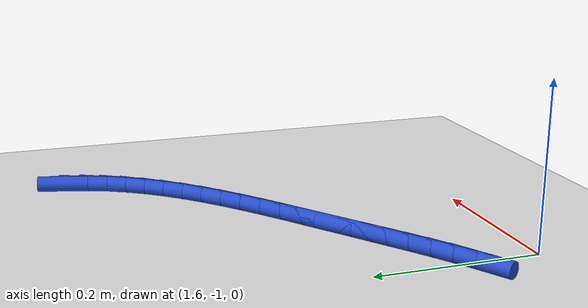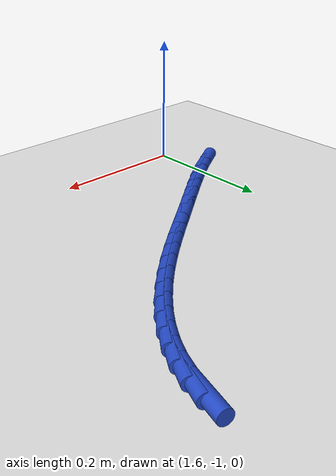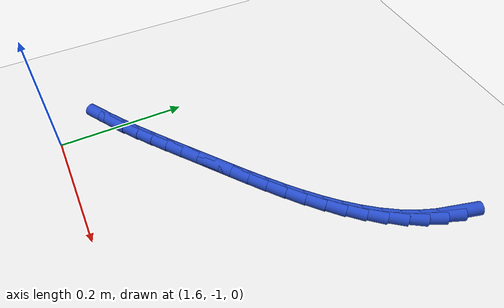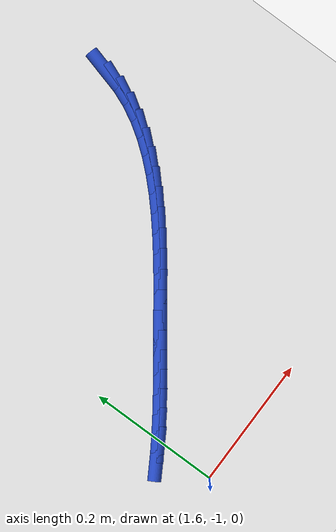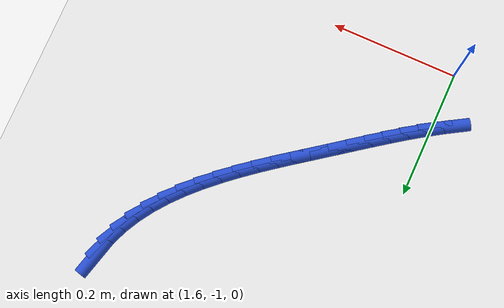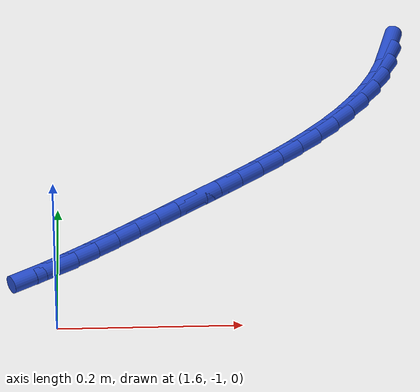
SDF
<sdf version="1.6">
 <world name="default">
  <model name="ground_plane">
   <static>1</static>
   <link name="link">
    <collision name="collision">
     <geometry><plane><normal>0 0 1</normal><size>100 100</size></plane></geometry>
     <surface><friction><ode><mu>100</mu><mu2>50</mu2></ode></friction></surface>
    </collision>
    <visual name="visual">
     <cast_shadows>0</cast_shadows>
     <geometry><plane><normal>0 0 1</normal><size>100 100</size></plane></geometry>
     <material>
      <script><uri>file://media/materials/scripts/gazebo.material</uri><name>Gazebo/WhiteGlow</name></script>
     </material>
    </visual>
   </link>
  </model>
  <model name="line">
   <link name="link_140">
    <pose>1.9840193889303164 -0.5319811646775158 0.01 0 1.57 1.309776617764511</pose>
    <collision name="collision">
     <geometry><cylinder><radius>0.01</radius><length>0.08</length></cylinder></geometry>
    </collision>
    <visual name="visual">
     <material>
      <script><name>Gazebo/Blue</name><uri>file://media/materials/scripts/gazebo.material</uri></script>
     </material>
     <geometry><cylinder><radius>0.01</radius><length>0.08</length></cylinder></geometry>
    </visual>
   </link>
   <link name="link_141">
    <pose>1.9772105139700153 -0.5574717131408597 0.01 0 1.57 1.1932315954883381</pose>
    <collision name="collision">
     <geometry><cylinder><radius>0.01</radius><length>0.08</length></cylinder></geometry>
    </collision>
    <visual name="visual">
     <material>
      <script><name>Gazebo/Blue</name><uri>file://media/materials/scripts/gazebo.material</uri></script>
     </material>
     <geometry><cylinder><radius>0.01</radius><length>0.08</length></cylinder></geometry>
    </visual>
   </link>
   <link name="link_142">
    <pose>1.967499129766138 -0.5819588227129209 0.01 0 1.57 1.0875690864802083</pose>
    <collision name="collision">
     <geometry><cylinder><radius>0.01</radius><length>0.08</length></cylinder></geometry>
    </collision>
    <visual name="visual">
     <material>
      <script><name>Gazebo/Blue</name><uri>file://media/materials/scripts/gazebo.material</uri></script>
     </material>
     <geometry><cylinder><radius>0.01</radius><length>0.08</length></cylinder></geometry>
    </visual>
   </link>
   <link name="link_143">
    <pose>1.9551446419846292 -0.6055037511688827 0.01 0 1.57 0.9945785339513589</pose>
    <collision name="collision">
     <geometry><cylinder><radius>0.01</radius><length>0.08</length></cylinder></geometry>
    </collision>
    <visual name="visual">
     <material>
      <script><name>Gazebo/Blue</name><uri>file://media/materials/scripts/gazebo.material</uri></script>
     </material>
     <geometry><cylinder><radius>0.01</radius><length>0.08</length></cylinder></geometry>
    </visual>
   </link>
   <link name="link_144">
    <pose>1.9404164941597997 -0.6281702484964722 0.01 0 1.57 0.9144318759245642</pose>
    <collision name="collision">
     <geometry><cylinder><radius>0.01</radius><length>0.08</length></cylinder></geometry>
    </collision>
    <visual name="visual">
     <material>
      <script><name>Gazebo/Blue</name><uri>file://media/materials/scripts/gazebo.material</uri></script>
     </material>
     <geometry><cylinder><radius>0.01</radius><length>0.08</length></cylinder></geometry>
    </visual>
   </link>
   <link name="link_145">
    <pose>1.9235841298259617 -0.6500220646834178 0.01 0 1.57 0.8465205437505445</pose>
    <collision name="collision">
     <geometry><cylinder><radius>0.01</radius><length>0.08</length></cylinder></geometry>
    </collision>
    <visual name="visual">
     <material>
      <script><name>Gazebo/Blue</name><uri>file://media/materials/scripts/gazebo.material</uri></script>
     </material>
     <geometry><cylinder><radius>0.01</radius><length>0.08</length></cylinder></geometry>
    </visual>
   </link>
   <link name="link_146">
    <pose>1.904916992517427 -0.6711229497174469 0.01 0 1.57 0.7898570316272787</pose>
    <collision name="collision">
     <geometry><cylinder><radius>0.01</radius><length>0.08</length></cylinder></geometry>
    </collision>
    <visual name="visual">
     <material>
      <script><name>Gazebo/Blue</name><uri>file://media/materials/scripts/gazebo.material</uri></script>
     </material>
     <geometry><cylinder><radius>0.01</radius><length>0.08</length></cylinder></geometry>
    </visual>
   </link>
   <link name="link_147">
    <pose>1.8846845257685076 -0.6915366535862886 0.01 0 1.57 0.7433576582939936</pose>
    <collision name="collision">
     <geometry><cylinder><radius>0.01</radius><length>0.08</length></cylinder></geometry>
    </collision>
    <visual name="visual">
     <material>
      <script><name>Gazebo/Blue</name><uri>file://media/materials/scripts/gazebo.material</uri></script>
     </material>
     <geometry><cylinder><radius>0.01</radius><length>0.08</length></cylinder></geometry>
    </visual>
   </link>
   <link name="link_148">
    <pose>1.863156173113515 -0.7113269262776685 0.01 0 1.57 0.7060111458179945</pose>
    <collision name="collision">
     <geometry><cylinder><radius>0.01</radius><length>0.08</length></cylinder></geometry>
    </collision>
    <visual name="visual">
     <material>
      <script><name>Gazebo/Blue</name><uri>file://media/materials/scripts/gazebo.material</uri></script>
     </material>
     <geometry><cylinder><radius>0.01</radius><length>0.08</length></cylinder></geometry>
    </visual>
   </link>
   <link name="link_149">
    <pose>1.8406013780867607 -0.7305575177793153 0.01 0 1.57 0.6769661675770444</pose>
    <collision name="collision">
     <geometry><cylinder><radius>0.01</radius><length>0.08</length></cylinder></geometry>
    </collision>
    <visual name="visual">
     <material>
      <script><name>Gazebo/Blue</name><uri>file://media/materials/scripts/gazebo.material</uri></script>
     </material>
     <geometry><cylinder><radius>0.01</radius><length>0.08</length></cylinder></geometry>
    </visual>
   </link>
   <link name="link_150">
    <pose>1.8172895842225583 -0.7492921780789574 0.01 0 1.57 0.6555712120829792</pose>
    <collision name="collision">
     <geometry><cylinder><radius>0.01</radius><length>0.08</length></cylinder></geometry>
    </collision>
    <visual name="visual">
     <material>
      <script><name>Gazebo/Blue</name><uri>file://media/materials/scripts/gazebo.material</uri></script>
     </material>
     <geometry><cylinder><radius>0.01</radius><length>0.08</length></cylinder></geometry>
    </visual>
   </link>
   <link name="link_151">
    <pose>1.7934902350552169 -0.7675946571643218 0.01 0 1.57 0.6413913689428307</pose>
    <collision name="collision">
     <geometry><cylinder><radius>0.01</radius><length>0.08</length></cylinder></geometry>
    </collision>
    <visual name="visual">
     <material>
      <script><name>Gazebo/Blue</name><uri>file://media/materials/scripts/gazebo.material</uri></script>
     </material>
     <geometry><cylinder><radius>0.01</radius><length>0.08</length></cylinder></geometry>
    </visual>
   </link>
   <link name="link_152">
    <pose>1.7694727741190501 -0.7855287050231367 0.01 0 1.57 0.6342180360193193</pose>
    <collision name="collision">
     <geometry><cylinder><radius>0.01</radius><length>0.08</length></cylinder></geometry>
    </collision>
    <visual name="visual">
     <material>
      <script><name>Gazebo/Blue</name><uri>file://media/materials/scripts/gazebo.material</uri></script>
     </material>
     <geometry><cylinder><radius>0.01</radius><length>0.08</length></cylinder></geometry>
    </visual>
   </link>
   <link name="link_153">
    <pose>1.7455066449483692 -0.8031580716431297 0.01 0 1.57 0.6340253027455661</pose>
    <collision name="collision">
     <geometry><cylinder><radius>0.01</radius><length>0.08</length></cylinder></geometry>
    </collision>
    <visual name="visual">
     <material>
      <script><name>Gazebo/Blue</name><uri>file://media/materials/scripts/gazebo.material</uri></script>
     </material>
     <geometry><cylinder><radius>0.01</radius><length>0.08</length></cylinder></geometry>
    </visual>
   </link>
   <link name="link_154">
    <pose>1.7218594084677312 -0.8205458396337303 0.01 0 1.57 0.636637273741996</pose>
    <collision name="collision">
     <geometry><cylinder><radius>0.01</radius><length>0.08</length></cylinder></geometry>
    </collision>
    <visual name="visual">
     <material>
      <script><name>Gazebo/Blue</name><uri>file://media/materials/scripts/gazebo.material</uri></script>
     </material>
     <geometry><cylinder><radius>0.01</radius><length>0.08</length></cylinder></geometry>
    </visual>
   </link>
   <link name="link_155">
    <pose>1.6986526033765321 -0.8377033272576115 0.01 0 1.57 0.6345313103102908</pose>
    <collision name="collision">
     <geometry><cylinder><radius>0.01</radius><length>0.08</length></cylinder></geometry>
    </collision>
    <visual name="visual">
     <material>
      <script><name>Gazebo/Blue</name><uri>file://media/materials/scripts/gazebo.material</uri></script>
     </material>
     <geometry><cylinder><radius>0.01</radius><length>0.08</length></cylinder></geometry>
    </visual>
   </link>
   <link name="link_156">
    <pose>1.6757600445614709 -0.8545540355884781 0.01 0 1.57 0.6267524689849866</pose>
    <collision name="collision">
     <geometry><cylinder><radius>0.01</radius><length>0.08</length></cylinder></geometry>
    </collision>
    <visual name="visual">
     <material>
      <script><name>Gazebo/Blue</name><uri>file://media/materials/scripts/gazebo.material</uri></script>
     </material>
     <geometry><cylinder><radius>0.01</radius><length>0.08</length></cylinder></geometry>
    </visual>
   </link>
   <link name="link_157">
    <pose>1.6530315251794332 -0.8710129500843455 0.01 0 1.57 0.6131395334041028</pose>
    <collision name="collision">
     <geometry><cylinder><radius>0.01</radius><length>0.08</length></cylinder></geometry>
    </collision>
    <visual name="visual">
     <material>
      <script><name>Gazebo/Blue</name><uri>file://media/materials/scripts/gazebo.material</uri></script>
     </material>
     <geometry><cylinder><radius>0.01</radius><length>0.08</length></cylinder></geometry>
    </visual>
   </link>
   <link name="link_158">
    <pose>1.6303168383873066 -0.8869950562032298 0.01 0 1.57 0.5936238989169534</pose>
    <collision name="collision">
     <geometry><cylinder><radius>0.01</radius><length>0.08</length></cylinder></geometry>
    </collision>
    <visual name="visual">
     <material>
      <script><name>Gazebo/Blue</name><uri>file://media/materials/scripts/gazebo.material</uri></script>
     </material>
     <geometry><cylinder><radius>0.01</radius><length>0.08</length></cylinder></geometry>
    </visual>
   </link>
   <link name="link_159">
    <pose>1.6074657773419785 -0.9024153394031464 0.01 0 1.57 0.5682502145895029</pose>
    <collision name="collision">
     <geometry><cylinder><radius>0.01</radius><length>0.08</length></cylinder></geometry>
    </collision>
    <visual name="visual">
     <material>
      <script><name>Gazebo/Blue</name><uri>file://media/materials/scripts/gazebo.material</uri></script>
     </material>
     <geometry><cylinder><radius>0.01</radius><length>0.08</length></cylinder></geometry>
    </visual>
   </link>
   <link name="link_160">
    <pose>1.5843281352003353 -0.9171887851421111 0.01 0 1.57 0.5371986898715817</pose>
    <collision name="collision">
     <geometry><cylinder><radius>0.01</radius><length>0.08</length></cylinder></geometry>
    </collision>
    <visual name="visual">
     <material>
      <script><name>Gazebo/Blue</name><uri>file://media/materials/scripts/gazebo.material</uri></script>
     </material>
     <geometry><cylinder><radius>0.01</radius><length>0.08</length></cylinder></geometry>
    </visual>
   </link>
  </model>
 </world>
</sdf>
